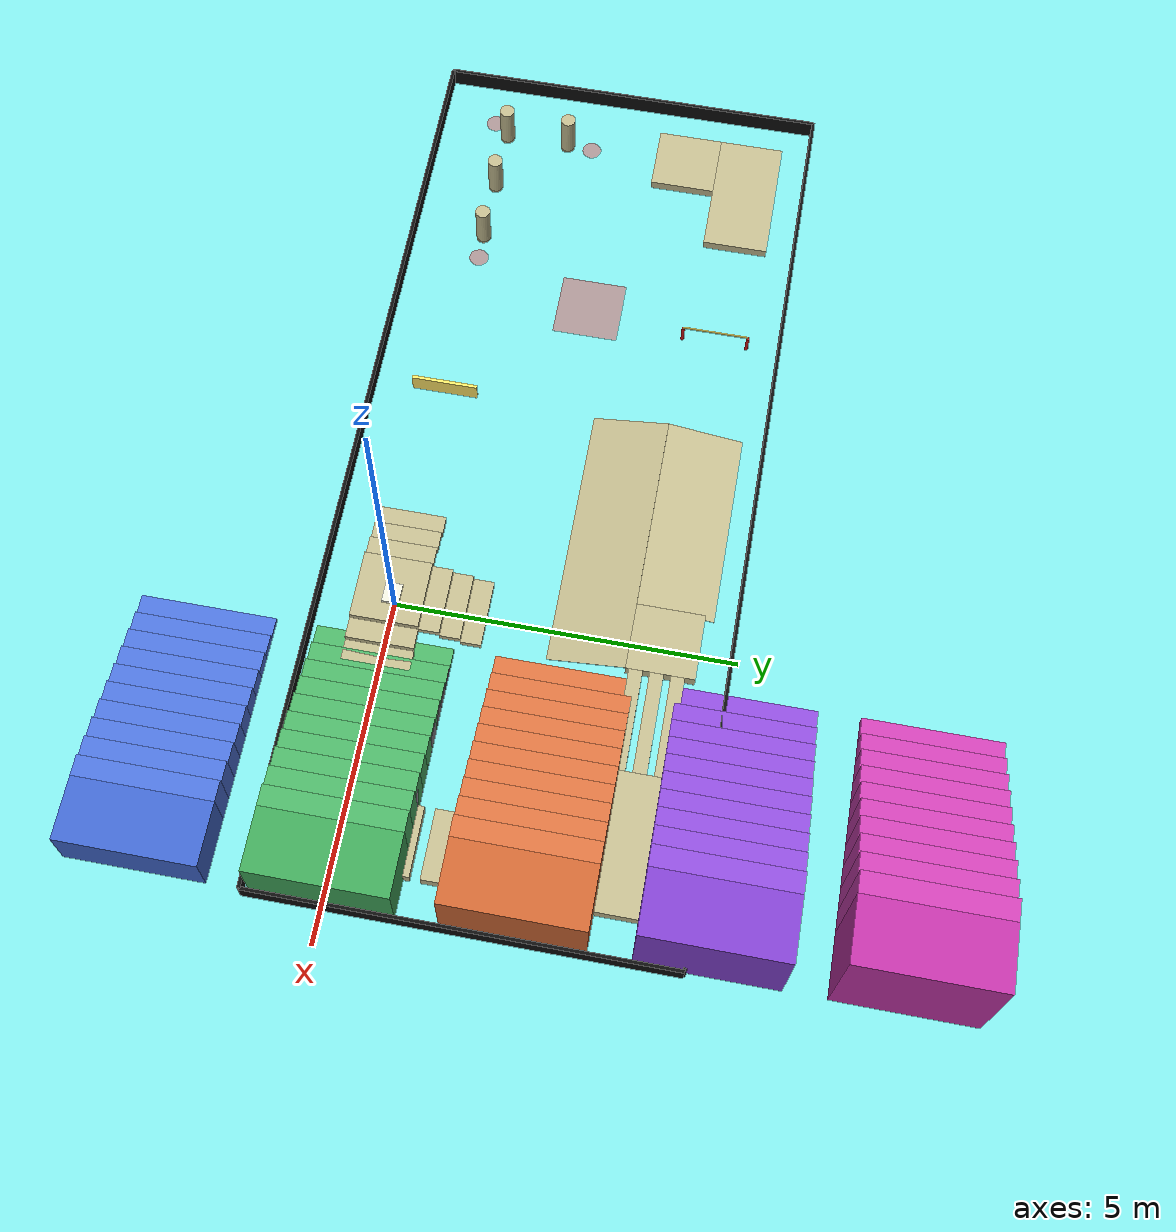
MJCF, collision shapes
<?xml version='1.0' encoding='utf-8'?>
<mujoco model="mybot_v3">
    <compiler angle="radian" meshdir="../meshes/" autolimits="true" />
    <size njmax="500" nconmax="100" />
    <option gravity="0 0 -9.806" iterations="50" solver="Newton" timestep="0.005" />

    <default>
        <default class="dog_v2">
            <!-- Match Isaac Gym: robot self-collision is disabled; nominal surface friction is 1.0. -->
            <geom contype="1" conaffinity="4" friction="1 0.005 0.0001" rgba="0.5 0.6 0.7 1" margin="0.001" group="0" />
            <joint armature="0.01" damping="0" frictionloss="0.1" />
            <motor ctrlrange="-33.5 33.5" ctrllimited="true" />

            <default class="abduction">
                <joint damping="0" frictionloss="0.1" />
            </default>
            <default class="thigh">
                <joint damping="0" frictionloss="0.1" />
            </default>
            <default class="calf">
                <joint damping="0" armature="0.01" frictionloss="0.3" />
                <motor gear="2.3333" />
            </default>
        </default>

        <light castshadow="false" diffuse="1 1 1" />
        <camera fovy="60" />
    </default>

    <asset>
        <mesh name="body" file="body.STL" />
        <mesh name="FL_hip" file="FL_hip.STL" />
        <mesh name="FL_thigh" file="FL_thigh.STL" />
        <mesh name="FL_calf" file="FL_calf.STL" />
        <mesh name="FL_foot" file="FL_foot.STL" />
        <mesh name="FR_hip" file="FR_hip.STL" />
        <mesh name="FR_thigh" file="FR_thigh.STL" />
        <mesh name="FR_calf" file="FR_calf.STL" />
        <mesh name="FR_foot" file="FR_foot.STL" />
        <mesh name="RL_hip" file="RL_hip.STL" />
        <mesh name="RL_thigh" file="RL_thigh.STL" />
        <mesh name="RL_calf" file="RL_calf.STL" />
        <mesh name="RL_foot" file="RL_foot.STL" />
        <mesh name="RR_hip" file="RR_hip.STL" />
        <mesh name="RR_thigh" file="RR_thigh.STL" />
        <mesh name="RR_calf" file="RR_calf.STL" />
        <mesh name="RR_foot" file="RR_foot.STL" />

        <texture type="skybox" builtin="gradient" rgb1="1.0 1.0 1.0" rgb2="1.0 1.0 1.0" width="512" height="512" />
        <texture name="plane" type="2d" builtin="flat" rgb1="1 1 1" rgb2="1 1 1" width="512" height="512" mark="cross" markrgb="0 0 0" />
        <material name="plane" reflectance="0.0" texture="plane" texrepeat="3 3" texuniform="true" />
    <texture type="skybox" builtin="gradient" rgb1="0.3 0.5 0.7" rgb2="0 0 0" width="512" height="3072" />
    <texture type="2d" name="groundplane" builtin="checker" mark="edge" rgb1="0.2 0.3 0.4" rgb2="0.1 0.2 0.3" markrgb="0.8 0.8 0.8" width="300" height="300" />
    <material name="groundplane" texture="groundplane" texuniform="true" texrepeat="5 5" reflectance="0.2" />
    </asset>

    <visual>
        <rgba com="0.502 1.0 0 0.5" contactforce="0.98 0.4 0.4 0.7" contactpoint="1.0 1.0 0.6 0.4" />
        <scale com="0.2" forcewidth="0.035" contactwidth="0.10" contactheight="0.04" />
    </visual>

    <worldbody>
        <light directional="true" diffuse=".8 .8 .8" pos="0 0 10" dir="0 0 -10" />
        <camera name="track" mode="trackcom" pos="0 -1.3 1.6" xyaxes="1 0 0 0 0.707 0.707" />
        <geom name="floor" type="plane" conaffinity="1" condim="3" contype="1" rgba="0.5 0.9 0.9 0.1" material="plane" pos="0 0 0" size="0 0 1" />

        <!-- Simple reproducible stairs for sim2sim. The bridge disables these for terrain_mode=flat. -->
        <geom name="sim_stair_0" type="box" pos="0.7 0 0.04" size="0.15 1.0 0.04" friction="1 0.005 0.0001" rgba="0.35 0.35 0.38 1" />
        <geom name="sim_stair_1" type="box" pos="1.0 0 0.08" size="0.15 1.0 0.08" friction="1 0.005 0.0001" rgba="0.39 0.39 0.42 1" />
        <geom name="sim_stair_2" type="box" pos="1.3 0 0.12" size="0.15 1.0 0.12" friction="1 0.005 0.0001" rgba="0.43 0.43 0.46 1" />
        <geom name="sim_stair_3" type="box" pos="1.6 0 0.16" size="0.15 1.0 0.16" friction="1 0.005 0.0001" rgba="0.47 0.47 0.50 1" />
        <geom name="sim_stair_4" type="box" pos="1.9 0 0.20" size="0.15 1.0 0.20" friction="1 0.005 0.0001" rgba="0.51 0.51 0.54 1" />
        <geom name="sim_stair_5" type="box" pos="2.2 0 0.24" size="0.15 1.0 0.24" friction="1 0.005 0.0001" rgba="0.55 0.55 0.58 1" />
        <geom name="sim_stair_6" type="box" pos="2.5 0 0.28" size="0.15 1.0 0.28" friction="1 0.005 0.0001" rgba="0.59 0.59 0.62 1" />
        <geom name="sim_stair_7" type="box" pos="2.8 0 0.32" size="0.15 1.0 0.32" friction="1 0.005 0.0001" rgba="0.63 0.63 0.66 1" />
        <geom name="sim_stair_top" type="box" pos="3.55 0 0.32" size="0.45 1.0 0.32" friction="1 0.005 0.0001" rgba="0.67 0.67 0.70 1" />

        <!-- Five parallel 10-step test lanes. sim2sim_mujoco.py positions these at runtime. -->
        <!-- Lane 0: 8 cm risers, y=-2.6. -->
        <geom name="sim_three_stair_0" type="box" pos="0.7 -2.6 0.04" size="0.15 1.0 0.04" friction="1 0.005 0.0001" rgba="0.30 0.45 0.85 1" />
        <geom name="sim_three_stair_1" type="box" pos="1.0 -2.6 0.08" size="0.15 1.0 0.08" friction="1 0.005 0.0001" rgba="0.30 0.45 0.85 1" />
        <geom name="sim_three_stair_2" type="box" pos="1.3 -2.6 0.12" size="0.15 1.0 0.12" friction="1 0.005 0.0001" rgba="0.30 0.45 0.85 1" />
        <geom name="sim_three_stair_3" type="box" pos="1.6 -2.6 0.16" size="0.15 1.0 0.16" friction="1 0.005 0.0001" rgba="0.30 0.45 0.85 1" />
        <geom name="sim_three_stair_4" type="box" pos="1.9 -2.6 0.20" size="0.15 1.0 0.20" friction="1 0.005 0.0001" rgba="0.30 0.45 0.85 1" />
        <geom name="sim_three_stair_5" type="box" pos="2.2 -2.6 0.24" size="0.15 1.0 0.24" friction="1 0.005 0.0001" rgba="0.30 0.45 0.85 1" />
        <geom name="sim_three_stair_6" type="box" pos="2.5 -2.6 0.28" size="0.15 1.0 0.28" friction="1 0.005 0.0001" rgba="0.30 0.45 0.85 1" />
        <geom name="sim_three_stair_7" type="box" pos="2.8 -2.6 0.32" size="0.15 1.0 0.32" friction="1 0.005 0.0001" rgba="0.30 0.45 0.85 1" />
        <geom name="sim_three_stair_8" type="box" pos="3.1 -2.6 0.36" size="0.15 1.0 0.36" friction="1 0.005 0.0001" rgba="0.30 0.45 0.85 1" />
        <geom name="sim_three_stair_9" type="box" pos="3.4 -2.6 0.40" size="0.15 1.0 0.40" friction="1 0.005 0.0001" rgba="0.30 0.45 0.85 1" />
        <geom name="sim_three_stair_top_0" type="box" pos="4.0 -2.6 0.40" size="0.45 1.0 0.40" friction="1 0.005 0.0001" rgba="0.25 0.40 0.80 1" />

        <!-- Lane 1: 10 cm risers, y=0. -->
        <geom name="sim_three_stair_10" type="box" pos="0.7 0 0.05" size="0.15 1.0 0.05" friction="1 0.005 0.0001" rgba="0.30 0.70 0.40 1" />
        <geom name="sim_three_stair_11" type="box" pos="1.0 0 0.10" size="0.15 1.0 0.10" friction="1 0.005 0.0001" rgba="0.30 0.70 0.40 1" />
        <geom name="sim_three_stair_12" type="box" pos="1.3 0 0.15" size="0.15 1.0 0.15" friction="1 0.005 0.0001" rgba="0.30 0.70 0.40 1" />
        <geom name="sim_three_stair_13" type="box" pos="1.6 0 0.20" size="0.15 1.0 0.20" friction="1 0.005 0.0001" rgba="0.30 0.70 0.40 1" />
        <geom name="sim_three_stair_14" type="box" pos="1.9 0 0.25" size="0.15 1.0 0.25" friction="1 0.005 0.0001" rgba="0.30 0.70 0.40 1" />
        <geom name="sim_three_stair_15" type="box" pos="2.2 0 0.30" size="0.15 1.0 0.30" friction="1 0.005 0.0001" rgba="0.30 0.70 0.40 1" />
        <geom name="sim_three_stair_16" type="box" pos="2.5 0 0.35" size="0.15 1.0 0.35" friction="1 0.005 0.0001" rgba="0.30 0.70 0.40 1" />
        <geom name="sim_three_stair_17" type="box" pos="2.8 0 0.40" size="0.15 1.0 0.40" friction="1 0.005 0.0001" rgba="0.30 0.70 0.40 1" />
        <geom name="sim_three_stair_18" type="box" pos="3.1 0 0.45" size="0.15 1.0 0.45" friction="1 0.005 0.0001" rgba="0.30 0.70 0.40 1" />
        <geom name="sim_three_stair_19" type="box" pos="3.4 0 0.50" size="0.15 1.0 0.50" friction="1 0.005 0.0001" rgba="0.30 0.70 0.40 1" />
        <geom name="sim_three_stair_top_1" type="box" pos="4.0 0 0.50" size="0.45 1.0 0.50" friction="1 0.005 0.0001" rgba="0.25 0.65 0.35 1" />

        <!-- Lane 2: 12 cm risers, y=2.6. -->
        <geom name="sim_three_stair_20" type="box" pos="0.7 2.6 0.06" size="0.15 1.0 0.06" friction="1 0.005 0.0001" rgba="0.85 0.45 0.25 1" />
        <geom name="sim_three_stair_21" type="box" pos="1.0 2.6 0.12" size="0.15 1.0 0.12" friction="1 0.005 0.0001" rgba="0.85 0.45 0.25 1" />
        <geom name="sim_three_stair_22" type="box" pos="1.3 2.6 0.18" size="0.15 1.0 0.18" friction="1 0.005 0.0001" rgba="0.85 0.45 0.25 1" />
        <geom name="sim_three_stair_23" type="box" pos="1.6 2.6 0.24" size="0.15 1.0 0.24" friction="1 0.005 0.0001" rgba="0.85 0.45 0.25 1" />
        <geom name="sim_three_stair_24" type="box" pos="1.9 2.6 0.30" size="0.15 1.0 0.30" friction="1 0.005 0.0001" rgba="0.85 0.45 0.25 1" />
        <geom name="sim_three_stair_25" type="box" pos="2.2 2.6 0.36" size="0.15 1.0 0.36" friction="1 0.005 0.0001" rgba="0.85 0.45 0.25 1" />
        <geom name="sim_three_stair_26" type="box" pos="2.5 2.6 0.42" size="0.15 1.0 0.42" friction="1 0.005 0.0001" rgba="0.85 0.45 0.25 1" />
        <geom name="sim_three_stair_27" type="box" pos="2.8 2.6 0.48" size="0.15 1.0 0.48" friction="1 0.005 0.0001" rgba="0.85 0.45 0.25 1" />
        <geom name="sim_three_stair_28" type="box" pos="3.1 2.6 0.54" size="0.15 1.0 0.54" friction="1 0.005 0.0001" rgba="0.85 0.45 0.25 1" />
        <geom name="sim_three_stair_29" type="box" pos="3.4 2.6 0.60" size="0.15 1.0 0.60" friction="1 0.005 0.0001" rgba="0.85 0.45 0.25 1" />
        <geom name="sim_three_stair_top_2" type="box" pos="4.0 2.6 0.60" size="0.45 1.0 0.60" friction="1 0.005 0.0001" rgba="0.80 0.40 0.20 1" />

        <!-- Lane 3: 15 cm risers, y=5.2. -->
        <geom name="sim_three_stair_30" type="box" pos="0.7 5.2 0.075" size="0.15 1.0 0.075" friction="1 0.005 0.0001" rgba="0.55 0.30 0.85 1" />
        <geom name="sim_three_stair_31" type="box" pos="1.0 5.2 0.15" size="0.15 1.0 0.15" friction="1 0.005 0.0001" rgba="0.55 0.30 0.85 1" />
        <geom name="sim_three_stair_32" type="box" pos="1.3 5.2 0.225" size="0.15 1.0 0.225" friction="1 0.005 0.0001" rgba="0.55 0.30 0.85 1" />
        <geom name="sim_three_stair_33" type="box" pos="1.6 5.2 0.30" size="0.15 1.0 0.30" friction="1 0.005 0.0001" rgba="0.55 0.30 0.85 1" />
        <geom name="sim_three_stair_34" type="box" pos="1.9 5.2 0.375" size="0.15 1.0 0.375" friction="1 0.005 0.0001" rgba="0.55 0.30 0.85 1" />
        <geom name="sim_three_stair_35" type="box" pos="2.2 5.2 0.45" size="0.15 1.0 0.45" friction="1 0.005 0.0001" rgba="0.55 0.30 0.85 1" />
        <geom name="sim_three_stair_36" type="box" pos="2.5 5.2 0.525" size="0.15 1.0 0.525" friction="1 0.005 0.0001" rgba="0.55 0.30 0.85 1" />
        <geom name="sim_three_stair_37" type="box" pos="2.8 5.2 0.60" size="0.15 1.0 0.60" friction="1 0.005 0.0001" rgba="0.55 0.30 0.85 1" />
        <geom name="sim_three_stair_38" type="box" pos="3.1 5.2 0.675" size="0.15 1.0 0.675" friction="1 0.005 0.0001" rgba="0.55 0.30 0.85 1" />
        <geom name="sim_three_stair_39" type="box" pos="3.4 5.2 0.75" size="0.15 1.0 0.75" friction="1 0.005 0.0001" rgba="0.55 0.30 0.85 1" />
        <geom name="sim_three_stair_top_3" type="box" pos="4.0 5.2 0.75" size="0.45 1.0 0.75" friction="1 0.005 0.0001" rgba="0.50 0.25 0.80 1" />

        <!-- Lane 4: 20 cm risers, y=7.8. -->
        <geom name="sim_three_stair_40" type="box" pos="0.7 7.8 0.10" size="0.15 1.0 0.10" friction="1 0.005 0.0001" rgba="0.80 0.25 0.70 1" />
        <geom name="sim_three_stair_41" type="box" pos="1.0 7.8 0.20" size="0.15 1.0 0.20" friction="1 0.005 0.0001" rgba="0.80 0.25 0.70 1" />
        <geom name="sim_three_stair_42" type="box" pos="1.3 7.8 0.30" size="0.15 1.0 0.30" friction="1 0.005 0.0001" rgba="0.80 0.25 0.70 1" />
        <geom name="sim_three_stair_43" type="box" pos="1.6 7.8 0.40" size="0.15 1.0 0.40" friction="1 0.005 0.0001" rgba="0.80 0.25 0.70 1" />
        <geom name="sim_three_stair_44" type="box" pos="1.9 7.8 0.50" size="0.15 1.0 0.50" friction="1 0.005 0.0001" rgba="0.80 0.25 0.70 1" />
        <geom name="sim_three_stair_45" type="box" pos="2.2 7.8 0.60" size="0.15 1.0 0.60" friction="1 0.005 0.0001" rgba="0.80 0.25 0.70 1" />
        <geom name="sim_three_stair_46" type="box" pos="2.5 7.8 0.70" size="0.15 1.0 0.70" friction="1 0.005 0.0001" rgba="0.80 0.25 0.70 1" />
        <geom name="sim_three_stair_47" type="box" pos="2.8 7.8 0.80" size="0.15 1.0 0.80" friction="1 0.005 0.0001" rgba="0.80 0.25 0.70 1" />
        <geom name="sim_three_stair_48" type="box" pos="3.1 7.8 0.90" size="0.15 1.0 0.90" friction="1 0.005 0.0001" rgba="0.80 0.25 0.70 1" />
        <geom name="sim_three_stair_49" type="box" pos="3.4 7.8 1.00" size="0.15 1.0 1.00" friction="1 0.005 0.0001" rgba="0.80 0.25 0.70 1" />
        <geom name="sim_three_stair_top_4" type="box" pos="4.0 7.8 1.00" size="0.45 1.0 1.00" friction="1 0.005 0.0001" rgba="0.75 0.20 0.65 1" />

        <body name="body" pos="0 0 0.35" childclass="dog_v2">
            <inertial pos="0.00000000 0.00000000 0.00000000" mass="3.87237343" fullinertia="0.02571059 0.06723291 0.07677825 0.00000003 0.00005548 0.00000039" />
            <joint type="free" />
            <geom type="mesh" contype="0" conaffinity="0" group="1" rgba="0.847 0.847 0.847 1" mesh="body" />
            <geom size="0.15 0.125 0.1" pos="0 0 0" type="box" rgba="0.913 0.913 0.847 0" />
            <site name="imu" pos="0 0 0" />

            <body name="FL_hip" pos="0.15078 0.062035 0.0028793">
                <inertial pos="0.06912954 0.00308032 -0.00003864" mass="0.88715151" fullinertia="0.00069961 0.00185100 0.00156540 -0.00005524 0.00000161 -0.00000029" />
                <joint class="abduction" name="FL_hip_joint" pos="0 0 0" axis="1 0 0" range="-0.8 0.8" />
                <geom type="mesh" contype="0" conaffinity="0" group="1" rgba="1 1 1 1" mesh="FL_hip" />
                <geom size="0.025 0.025 0.025" pos="0.09 0 0" euler="1.5707963 0 0" type="box" rgba="0.913 0.913 0.847 0" />

                <body name="FL_thigh" pos="0.0889996956253644 0.0289500000000045 0">
                    <inertial pos="-0.00157835 0.05108903 -0.03349728" mass="1.44059854" fullinertia="0.00712300 0.00681289 0.00198498 0.00006001 -0.00006848 0.00118491" />
                    <joint class="thigh" name="FL_thigh_joint" pos="0 0 0" axis="0 1 0" range="-1.04 4.18" />
                    <geom type="mesh" contype="0" conaffinity="0" group="1" rgba="1 1 1 1" mesh="FL_thigh" />
                    <geom size="0.02 0.02 0.1" pos="0 0.08 -0.1" type="box" rgba="0.913 0.913 0.847 0" />

                    <body name="FL_calf" pos="0 0.075299999999995 -0.220000271728273">
                        <inertial pos="0.00128763 0.00019208 -0.06746137" mass="0.23708419" fullinertia="0.00201781 0.00206401 0.00012004 -0.00000038 0.00025632 0.00000347" />
                        <joint class="calf" name="FL_calf_joint" pos="0 0 0" axis="0 1 0" range="-2.69 -0.91" />
                        <geom type="mesh" contype="0" conaffinity="0" group="1" rgba="0.847 0.847 0.847 1" mesh="FL_calf" />
                        <geom size="0.015 0.025 0.1" pos="0 0 -0.11" euler="0 -0.3 0" type="box" rgba="0 0 0 0" />

                        <body name="FL_foot" pos="0 0.000400000000007244 -0.226044482407549">
                            <inertial pos="0.00000000 0.00000000 0.00000000" mass="0.03900000" fullinertia="0.00000624 0.00000624 0.00000624 0.00000000 0.00000000 0.00000000" />
                            <geom type="mesh" contype="0" conaffinity="0" group="1" rgba="0.298 0.298 0.298 1" mesh="FL_foot" />
                            <geom size="0.02" type="sphere" rgba="0 0 0 1" />
                        </body>
                    </body>
                </body>
            </body>

            <body name="FR_hip" pos="0.15078 -0.061965 0.0028793">
                <inertial pos="0.06924677 -0.00308032 -0.00003847" mass="0.88715151" fullinertia="0.00069961 0.00185513 0.00156952 0.00005408 -0.00000026 0.00000029" />
                <joint class="abduction" name="FR_hip_joint" pos="0 0 0" axis="1 0 0" range="-0.8 0.8" />
                <geom type="mesh" contype="0" conaffinity="0" group="1" rgba="1 1 1 1" mesh="FR_hip" />
                <geom size="0.025 0.025 0.025" pos="0.09 0 0" euler="1.5707963 0 0" type="box" rgba="0.913 0.913 0.847 0" />

                <body name="FR_thigh" pos="0.0889996956253649 -0.0289500000000027 0">
                    <inertial pos="-0.00165058 -0.05108904 -0.03349728" mass="1.44059854" fullinertia="0.00712300 0.00681255 0.00198464 -0.00005712 -0.00006685 -0.00118491" />
                    <joint class="thigh" name="FR_thigh_joint" pos="0 0 0" axis="0 1 0" range="-1.04 4.18" />
                    <geom type="mesh" contype="0" conaffinity="0" group="1" rgba="1 1 1 1" mesh="FR_thigh" />
                    <geom size="0.02 0.02 0.1" pos="0 -0.08 -0.1" type="box" rgba="0.913 0.913 0.847 0" />

                    <body name="FR_calf" pos="0 -0.0752999999999995 -0.220000271728275">
                        <inertial pos="0.00128778 0.00059175 -0.06722727" mass="0.23765586" fullinertia="0.00208296 0.00206862 0.00018061 0.00000010 0.00025619 -0.00002062" />
                        <joint class="calf" name="FR_calf_joint" pos="0 0 0" axis="0 1 0" range="-2.69 -0.91" />
                        <geom type="mesh" contype="0" conaffinity="0" group="1" rgba="0.847 0.847 0.847 1" mesh="FR_calf" />
                        <geom size="0.015 0.025 0.1" pos="0 0 -0.11" euler="0 -0.3 0" type="box" rgba="0 0 0 0" />

                        <body name="FR_foot" pos="0 -0.000399999999994072 -0.226044482407548">
                            <inertial pos="0.00000000 0.00000000 0.00000000" mass="0.03900000" fullinertia="0.00000624 0.00000624 0.00000624 0.00000000 0.00000000 0.00000000" />
                            <geom type="mesh" contype="0" conaffinity="0" group="1" rgba="0.298 0.298 0.298 1" mesh="FR_foot" />
                            <geom size="0.02" type="sphere" rgba="0 0 0 1" />
                        </body>
                    </body>
                </body>
            </body>

            <body name="RL_hip" pos="-0.15042 0.062035 0.0028793">
                <inertial pos="-0.06912961 0.00308032 0.00003847" mass="0.88715151" fullinertia="0.00069961 0.00185101 0.00156540 0.00005524 0.00000161 0.00000029" />
                <joint class="abduction" name="RL_hip_joint" pos="0 0 0" axis="1 0 0" range="-0.8 0.8" />
                <geom type="mesh" contype="0" conaffinity="0" group="1" rgba="1 1 1 1" mesh="RL_hip" />
                <geom size="0.025 0.025 0.025" pos="-0.09 0 0" euler="1.5707963 0 0" type="box" rgba="0.913 0.913 0.847 0" />

                <body name="RL_thigh" pos="-0.0889996956253643 0.0289499874999981 0">
                    <inertial pos="-0.00160464 0.05142477 -0.03321690" mass="1.45185979" fullinertia="0.00716742 0.00683898 0.00201350 0.00006033 -0.00006711 0.00116896" />
                    <joint class="thigh" name="RL_thigh_joint" pos="0 0 0" axis="0 1 0" range="-1.04 4.18" />
                    <geom type="mesh" contype="0" conaffinity="0" group="1" rgba="1 1 1 1" mesh="RL_thigh" />
                    <geom size="0.02 0.02 0.1" pos="0 0.08 -0.1" type="box" rgba="0.913 0.913 0.847 0" />

                    <body name="RL_calf" pos="0 0.0752999999999953 -0.220000271728273">
                        <inertial pos="0.00125720 0.00001358 -0.06699953" mass="0.23880158" fullinertia="0.00202425 0.00207095 0.00011991 0.00000000 0.00025653 -0.00000027" />
                        <joint class="calf" name="RL_calf_joint" pos="0 0 0" axis="0 1 0" range="-2.69 -0.91" />
                        <geom type="mesh" contype="0" conaffinity="0" group="1" rgba="0.847 0.847 0.847 1" mesh="RL_calf" />
                        <geom size="0.015 0.025 0.1" pos="0 0 -0.11" euler="0 -0.3 0" type="box" rgba="0 0 0 0" />

                        <body name="RL_foot" pos="0 0 -0.226044482410381">
                            <inertial pos="0.00000000 0.00000000 0.00000000" mass="0.03900000" fullinertia="0.00000624 0.00000624 0.00000624 0.00000000 0.00000000 0.00000000" />
                            <geom type="mesh" contype="0" conaffinity="0" group="1" rgba="0.298 0.298 0.298 1" mesh="RL_foot" />
                            <geom size="0.02" type="sphere" rgba="0 0 0 1" />
                        </body>
                    </body>
                </body>
            </body>

            <body name="RR_hip" pos="-0.150422440000001 -0.0619648146458117 0.00287929128020871">
                <inertial pos="-0.06924676 -0.00308032 0.00003847" mass="0.88715151" fullinertia="0.00069961 0.00185513 0.00156952 -0.00005408 -0.00000026 -0.00000029" />
                <joint class="abduction" name="RR_hip_joint" pos="0 0 0" axis="1 0 0" range="-0.8 0.8" />
                <geom type="mesh" contype="0" conaffinity="0" group="1" rgba="0.847 0.847 0.847 1" mesh="RR_hip" />
                <geom size="0.025 0.025 0.025" pos="-0.09 0 0" euler="1.5707963 0 0" type="box" rgba="0.913 0.913 0.847 0" />

                <body name="RR_thigh" pos="-0.0889996956253639 -0.0289499875000004 0">
                    <inertial pos="-0.00167539 -0.05090610 -0.02942817" mass="1.42118841" fullinertia="0.00608478 0.00578599 0.00198060 -0.00005774 -0.00007671 -0.00103286" />
                    <joint class="thigh" name="RR_thigh_joint" pos="0 0 0" axis="0 1 0" range="-1.04 4.18" />
                    <geom type="mesh" contype="0" conaffinity="0" group="1" rgba="1 1 1 1" mesh="RR_thigh" />
                    <geom size="0.02 0.02 0.1" pos="0 -0.08 -0.1" type="box" rgba="0.913 0.913 0.847 0" />

                    <body name="RR_calf" pos="0 -0.0752999999999974 -0.220000271728273">
                        <inertial pos="0.00105039 -0.00009676 -0.06329053" mass="0.25719862" fullinertia="0.00207090 0.00210651 0.00013106 -0.00000003 0.00026042 0.00000158" />
                        <joint class="calf" name="RR_calf_joint" pos="0 0 0" axis="0 1 0" range="-2.69 -0.91" />
                        <geom type="mesh" contype="0" conaffinity="0" group="1" rgba="0.847 0.847 0.847 1" mesh="RR_calf" />
                        <geom size="0.015 0.025 0.1" pos="0 0 -0.11" euler="0 -0.3 0" type="box" rgba="0 0 0 0" />

                        <body name="RR_foot" pos="0 0 -0.226044482410382">
                            <inertial pos="0.00000000 0.00000000 0.00000000" mass="0.03900000" fullinertia="0.00000624 0.00000624 0.00000624 0.00000000 0.00000000 0.00000000" />
                            <geom type="mesh" contype="0" conaffinity="0" group="1" rgba="0.298 0.298 0.298 1" mesh="RR_foot" />
                            <geom size="0.02" type="sphere" rgba="0 0 0 1" />
                        </body>
                    </body>
                </body>
            </body>
        </body>

    <!-- 比赛地图基准地面。 -->
        <!-- 14m x 6m outer boundary transformed from A_bian: x_C=y_bian, y_C=-x_bian. -->
    <geom name="border_x_min" pos="-9.5 1.9 0.15" type="box" size="0.025 3.0 0.15" rgba="0.05 0.05 0.05 1" />
    <geom name="border_x_max" pos="4.5 1.9 0.15" type="box" size="0.025 3.0 0.15" rgba="0.05 0.05 0.05 1" />
    <geom name="border_y_min" pos="-2.5 -1.1 0.15" type="box" size="7.0 0.025 0.15" rgba="0.05 0.05 0.05 1" />
    <geom name="border_y_max" pos="-2.5 4.9 0.15" type="box" size="7.0 0.025 0.15" rgba="0.05 0.05 0.05 1" />
    <!-- 高墙：机器人需从上方跃过或攀爬通过，自动/遥控均可计分。 -->
    <geom pos="-3.620583 -0.010049 0.15" type="box" size="0.025 0.5 0.15" quat="1 0 0 0" rgba="1.0 0.9 0.4 1.0" />
    <!-- 砂砾碎木坑：L 形障碍，需从 1m 短边进入或离开，完整通过才计分。 -->
    <geom pos="-8.470246 2.97224 0.075" type="box" size="0.5 0.5 0.075" quat="0.707106781 0 0 0.707106781" rgba="0.75 0.72 0.55 1.0" />
    <geom pos="-7.970246 3.97224 0.075" type="box" size="0.5 1.0 0.075" quat="0.707106781 0 0 0.707106781" rgba="0.75 0.72 0.55 1.0" />
    <!-- 限高杆：机器人需从横杆下方通过，碰落横杆则越障失败。 -->
    <geom pos="-5.219014 4.406386 0.155" type="cylinder" size="0.025 0.155" quat="0.707106781 0 0 -0.707106781" rgba="0.8 0.1 0.1 1.0" />
    <geom pos="-5.219014 3.406386 0.155" type="cylinder" size="0.025 0.155" quat="0.707106781 0 0 -0.707106781" rgba="0.8 0.1 0.1 1.0" />
    <geom pos="-5.219014 3.906386 0.325" type="cylinder" size="0.015 0.5" quat="0.5 -0.5 -0.5 -0.5" rgba="1.0 0.9 0.4 1.0" />
    <!-- 启动区：规则允许地面和 T 字形台阶上各一个启动区，机器人需完全纳入启动区后开始。 -->
    <geom pos="-5.5 1.9 0" type="box" size="0.5 0.5 0.001" rgba="1.0 0.0 0.0 0.35" contype="0" conaffinity="0" />
    <!-- T 字形台阶：可选启动区之一在最高平台；通过时每一级台阶顶面需至少接触一次。 -->
    <geom pos="-1.325629 -0.037815 0.05" type="box" size="0.15 0.5 0.05" quat="1 0 0 0" rgba="0.75 0.72 0.55 1.0" />
    <geom pos="-1.025629 -0.037815 0.15" type="box" size="0.15 0.5 0.05" quat="1 0 0 0" rgba="0.75 0.72 0.55 1.0" />
    <geom pos="-0.725629 -0.037815 0.25" type="box" size="0.15 0.5 0.05" quat="1 0 0 0" rgba="0.75 0.72 0.55 1.0" />
    <geom pos="-0.075629 -0.037815 0.35" type="box" size="0.5 0.5 0.05" quat="1 0 0 0" rgba="0.75 0.72 0.55 1.0" />
    <geom pos="0.574371 -0.037815 0.25" type="box" size="0.15 0.5 0.05" quat="1 0 0 0" rgba="0.75 0.72 0.55 1.0" />
    <geom pos="0.874371 -0.037815 0.15" type="box" size="0.15 0.5 0.05" quat="1 0 0 0" rgba="0.75 0.72 0.55 1.0" />
    <geom pos="1.174371 -0.037815 0.05" type="box" size="0.15 0.5 0.05" quat="1 0 0 0" rgba="0.75 0.72 0.55 1.0" />
    <geom pos="-0.075629 0.612185 0.25" type="box" size="0.15 0.5 0.05" quat="0.707106781 0 0 -0.707106781" rgba="0.75 0.72 0.55 1.0" />
    <geom pos="-0.075629 0.912185 0.15" type="box" size="0.15 0.5 0.05" quat="0.707106781 0 0 -0.707106781" rgba="0.75 0.72 0.55 1.0" />
    <geom pos="-0.075629 1.212185 0.05" type="box" size="0.15 0.5 0.05" quat="0.707106781 0 0 -0.707106781" rgba="0.75 0.72 0.55 1.0" />
    <!-- 大斜坡、木桥 A / 木桥 B：大斜坡需满足长边行走距离要求；木桥需从一侧平台经木桥到达另一侧平台。 -->
    <geom pos="2.540216 0.040352 0.1" type="box" size="0.40 0.5 0.005" quat="0.992546088 0.121869866 0 0" rgba="0.75 0.72 0.55 1.0" />
    <geom pos="3.420216 0.040352 0.1" type="box" size="0.5 0.5 0.10" quat="0.707106781 0 0 -0.707106781" rgba="0.75 0.72 0.55 1.0" />
    <geom pos="3.420216 0.890352 0.1" type="box" size="0.2 0.5 0.10" quat="0.707106781 0 0 -0.707106781" rgba="0.75 0.72 0.55 1.0" />
    <geom pos="3.420216 1.440352 0.1" type="box" size="0.2 0.5 0.10" quat="0.707106781 0 0 -0.707106781" rgba="0.75 0.72 0.55 1.0" />
    <geom pos="3.420216 1.990352 0.1" type="box" size="0.2 0.5 0.10" quat="0.707106781 0 0 -0.707106781" rgba="0.75 0.72 0.55 1.0" />
    <geom pos="3.420216 2.540352 0.1" type="box" size="0.2 0.5 0.10" quat="0.707106781 0 0 -0.707106781" rgba="0.75 0.72 0.55 1.0" />
    <geom pos="3.420216 3.090352 0.1" type="box" size="0.2 0.5 0.10" quat="0.707106781 0 0 -0.707106781" rgba="0.75 0.72 0.55 1.0" />
    <geom pos="2.920216 3.940352 0.1" type="box" size="0.5 1.0 0.10" quat="0.707106781 0 0 -0.707106781" rgba="0.75 0.72 0.55 1.0" />
    <geom pos="2.420216 3.040552 0.0951" type="box" size="0.4133 0.5 0.005" quat="0.701836142 0.086174413 0.086174413 -0.701836142" rgba="0.75 0.72 0.55 1.0" />
    <geom pos="1.170216 3.590352 0.1" type="box" size="0.1 0.75 0.10" quat="0.707106781 0 0 -0.707106781" rgba="0.75 0.72 0.55 1.0" />
    <geom pos="1.170216 3.890352 0.1" type="box" size="0.1 0.75 0.10" quat="0.707106781 0 0 -0.707106781" rgba="0.75 0.72 0.55 1.0" />
    <geom pos="1.170216 4.190352 0.1" type="box" size="0.1 0.75 0.10" quat="0.707106781 0 0 -0.707106781" rgba="0.75 0.72 0.55 1.0" />
    <geom pos="-0.079784 3.940352 0.1" type="box" size="0.5 0.5 0.10" quat="0.707106781 0 0 -0.707106781" rgba="0.75 0.72 0.55 1.0" />
    <geom pos="-1.579784 2.874152 0.0951" type="box" size="0.5759 2.0 0.005" quat="0.704416012 0.061628579 0.061628579 -0.704416012" rgba="0.75 0.72 0.55 1.0" />
    <geom pos="-2.079784 4.008452 0.0951" type="box" size="0.5759 1.5 0.005" quat="0.704416012 -0.061628579 -0.061628579 -0.704416012" rgba="0.75 0.72 0.55 1.0" />
    <!-- 直角绕杆：需按 S 形绕过竖杆，并经过两端及拐角必达区。 -->
    <geom pos="-6.121128 0.005994 0" type="cylinder" size="0.15 0.001" rgba="1.0 0.0 0.0 0.35" contype="0" conaffinity="0" />
    <geom pos="-8.521128 1.405994 0" type="cylinder" size="0.15 0.001" rgba="1.0 0.0 0.0 0.35" contype="0" conaffinity="0" />
    <geom pos="-8.771128 -0.244006 0" type="cylinder" size="0.15 0.001" rgba="1.0 0.0 0.0 0.35" contype="0" conaffinity="0" />
    <geom name="slalom_pole_1_base" pos="-6.521128 0.005994 0.02" type="cylinder" size="0.115 0.02" rgba="0.75 0.72 0.55 1.0" />
    <geom name="slalom_pole_1_shaft" pos="-6.521128 0.005994 0.37" type="cylinder" size="0.115 0.33" rgba="0.75 0.72 0.55 1.0" />
    <geom name="slalom_pole_2_base" pos="-7.521128 0.005994 0.02" type="cylinder" size="0.115 0.02" rgba="0.75 0.72 0.55 1.0" />
    <geom name="slalom_pole_2_shaft" pos="-7.521128 0.005994 0.37" type="cylinder" size="0.115 0.33" rgba="0.75 0.72 0.55 1.0" />
    <geom name="slalom_pole_3_base" pos="-8.521128 0.005994 0.02" type="cylinder" size="0.115 0.02" rgba="0.75 0.72 0.55 1.0" />
    <geom name="slalom_pole_3_shaft" pos="-8.521128 0.005994 0.37" type="cylinder" size="0.115 0.33" rgba="0.75 0.72 0.55 1.0" />
    <geom name="slalom_pole_4_base" pos="-8.521128 1.005994 0.02" type="cylinder" size="0.115 0.02" rgba="0.75 0.72 0.55 1.0" />
    <geom name="slalom_pole_4_shaft" pos="-8.521128 1.005994 0.37" type="cylinder" size="0.115 0.33" rgba="0.75 0.72 0.55 1.0" />

    </worldbody>

    <actuator>
        <motor class="abduction" name="FL_hip" gear="1" joint="FL_hip_joint" />
        <motor class="thigh" name="FL_thigh" gear="1" joint="FL_thigh_joint" />
        <motor class="calf" name="FL_calf" joint="FL_calf_joint" />
        <motor class="abduction" name="FR_hip" gear="1" joint="FR_hip_joint" />
        <motor class="thigh" name="FR_thigh" gear="1" joint="FR_thigh_joint" />
        <motor class="calf" name="FR_calf" joint="FR_calf_joint" />
        <motor class="abduction" name="RL_hip" gear="1" joint="RL_hip_joint" />
        <motor class="thigh" name="RL_thigh" gear="1" joint="RL_thigh_joint" />
        <motor class="calf" name="RL_calf" joint="RL_calf_joint" />
        <motor class="abduction" name="RR_hip" gear="1" joint="RR_hip_joint" />
        <motor class="thigh" name="RR_thigh" gear="1" joint="RR_thigh_joint" />
        <motor class="calf" name="RR_calf" joint="RR_calf_joint" />
    </actuator>

    <sensor>
        <jointpos name="FL_hip_pos" joint="FL_hip_joint" />
        <jointpos name="FL_thigh_pos" joint="FL_thigh_joint" />
        <jointpos name="FL_calf_pos" joint="FL_calf_joint" />
        <jointpos name="FR_hip_pos" joint="FR_hip_joint" />
        <jointpos name="FR_thigh_pos" joint="FR_thigh_joint" />
        <jointpos name="FR_calf_pos" joint="FR_calf_joint" />
        <jointpos name="RL_hip_pos" joint="RL_hip_joint" />
        <jointpos name="RL_thigh_pos" joint="RL_thigh_joint" />
        <jointpos name="RL_calf_pos" joint="RL_calf_joint" />
        <jointpos name="RR_hip_pos" joint="RR_hip_joint" />
        <jointpos name="RR_thigh_pos" joint="RR_thigh_joint" />
        <jointpos name="RR_calf_pos" joint="RR_calf_joint" />

        <jointvel name="FL_hip_vel" joint="FL_hip_joint" />
        <jointvel name="FL_thigh_vel" joint="FL_thigh_joint" />
        <jointvel name="FL_calf_vel" joint="FL_calf_joint" />
        <jointvel name="FR_hip_vel" joint="FR_hip_joint" />
        <jointvel name="FR_thigh_vel" joint="FR_thigh_joint" />
        <jointvel name="FR_calf_vel" joint="FR_calf_joint" />
        <jointvel name="RL_hip_vel" joint="RL_hip_joint" />
        <jointvel name="RL_thigh_vel" joint="RL_thigh_joint" />
        <jointvel name="RL_calf_vel" joint="RL_calf_joint" />
        <jointvel name="RR_hip_vel" joint="RR_hip_joint" />
        <jointvel name="RR_thigh_vel" joint="RR_thigh_joint" />
        <jointvel name="RR_calf_vel" joint="RR_calf_joint" />

        <accelerometer name="Body_Acc" site="imu" />
        <gyro name="Body_Gyro" site="imu" />
        <framepos name="Body_Pos" objtype="site" objname="imu" />
        <framequat name="Body_Quat" objtype="site" objname="imu" />
    </sensor>
</mujoco>
